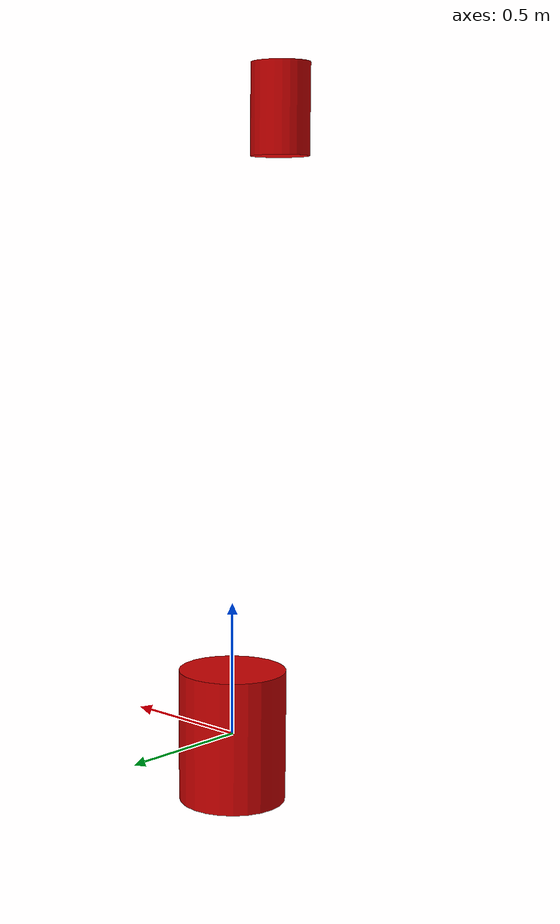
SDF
<sdf version="1.6">
    <model name="USBL_Dunker">
      <pose>0.0 0.0 0.0 0.0 0.0 0.0</pose>
      <link name="link_1">
        <pose>0.0 0.0 0.0 0.0 0.0 0.0</pose>
        <visual name="visual_box">
          <pose>0.0 0.0 0.0 0.0 0.0 0.0</pose>
          <geometry>
            <cylinder>
              <radius>0.2</radius>
              <length>0.5</length>
            </cylinder>
          </geometry>
          <cast_shadows>true</cast_shadows>
          <laser_retro>100.0</laser_retro>
          <material>
	        <ambient>.8 0 0 1</ambient>
            <diffuse>.8 0 0 1</diffuse>
            <specular>.8 0 0 1</specular>
            <emissive>.8 0 0 1</emissive>
          </material>
        </visual>

    	<collision name="collision_box">
          <pose>0.0 0.0 0.0 0.0 0.0 0.0</pose>
          <max_contacts>250</max_contacts>
          <geometry>
            <cylinder>
              <radius>0.2</radius>
              <length>0.5</length>
            </cylinder>
          </geometry>
        </collision>

        <sensor type="sonar" name="usbl">
          <plugin filename="libusbl_plugin.so" name="usbl_plugin">
            <robotNamespace>ship</robotNamespace>
          	<topicName>usbl</topicName>
            <beaconLinkName>beacon</beaconLinkName>
            <updateRate>0.5</updateRate> <!--Hz-->
          	<posAccuracy>0.002</posAccuracy>	<!--iXblue Posidonia is 0.2% slant range-->
            <alwaysOn>true</alwaysOn>
          </plugin>
          </sensor>

        <gravity>false</gravity>
        <self_collide>true</self_collide>
        <kinematic>false</kinematic>
      </link>
      <static>false</static>
    </model>

    <model name="USBL_Beacon">
      <pose>-2.0 2.0 2.0 0.0 0.0 0.0</pose>
      <link name="beacon">
        <pose>0.0 0.0 0.0 0.0 0.0 0.0</pose>
        <visual name="visual_box">
          <pose>0.0 0.0 0.0 0.0 0.0 0.0</pose>
          <geometry>
            <cylinder>
              <radius>0.05</radius>
              <length>0.15</length>
            </cylinder>
          </geometry>
          <cast_shadows>true</cast_shadows>
          <laser_retro>100.0</laser_retro>
          <material>
	        <ambient>.8 0 0 1</ambient>
            <diffuse>.8 0 0 1</diffuse>
            <specular>.8 0 0 1</specular>
            <emissive>.8 0 0 1</emissive>
          </material>
        </visual>

    	<collision name="collision_box">
          <pose>0.0 0.0 0.0 0.0 0.0 0.0</pose>
          <geometry>
            <cylinder>
              <radius>0.05</radius>
              <length>0.15</length>
            </cylinder>
          </geometry>
        </collision>
        <gravity>false</gravity>
        <self_collide>true</self_collide>
        <kinematic>false</kinematic>
      </link>
      <static>false</static>
    </model>

</sdf>
